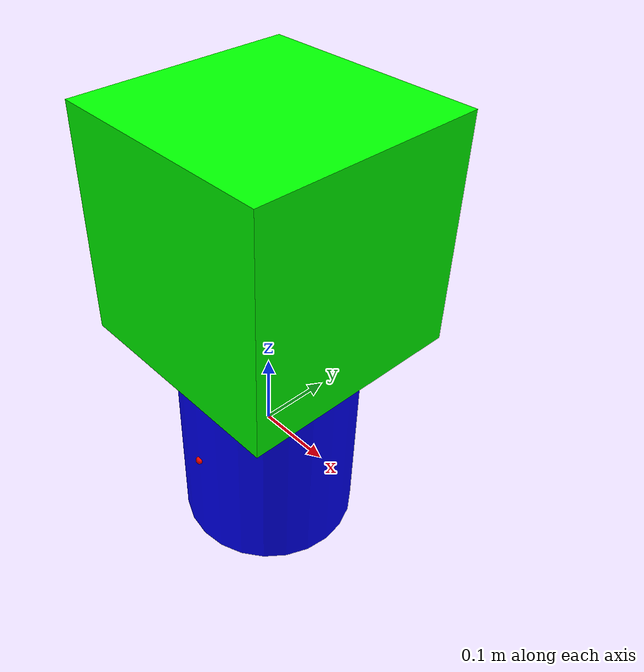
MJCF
<mujoco>
    <option gravity="0 0 0"/>

    <worldbody>
        <body name="floatbot" pos="0 0 0">

            <geom name="floatbot_body" type="cylinder" size=".12 .15" rgba="0 0 1 1"/>

            <inertial pos="0 0 0" mass="16.8" diaginertia=".121 .121 .121"/>

            <site name="thruster_0" pos="0 .12 0" rgba="1 0 0 1"/>
            <site name="thruster_1" pos="-.12 0 0" rgba="1 0 0 1"/>
            <site name="thruster_2" pos="0 -.12 0" rgba="1 0 0 1"/>
            <site name="thruster_3" pos=".12 0 0" rgba="1 0 0 1"/>

            <body name="voxel" pos="0 0 .3">
                <geom name="voxel"  type="box" size=".15 .15 .15" rgba="0 1 0 1"/>
                <inertial pos="0 0 0" mass="1.68" diaginertia=".0252 .0252 .0252"/>
            </body>
        </body>
    </worldbody>

    <actuator>
        <motor name="thruster_0" site="thruster_0" gear="1 0 0 0 0 0"/>
        <motor name="thruster_1" site="thruster_1" gear="0 1 0 0 0 0"/>
        <motor name="thruster_2" site="thruster_2" gear="1 0 0 0 0 0"/>
        <motor name="thruster_3" site="thruster_3" gear="0 1 0 0 0 0"/>
    </actuator>

</mujoco>
